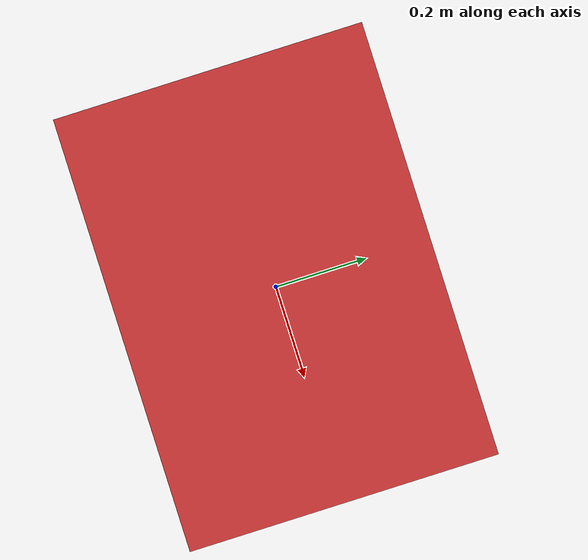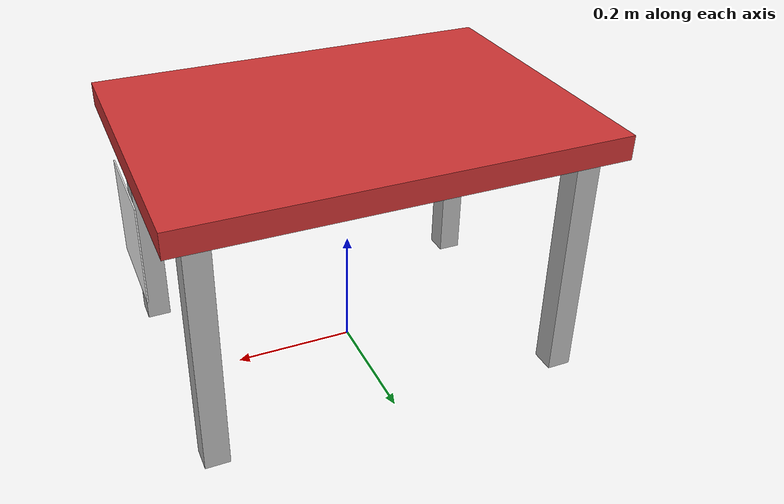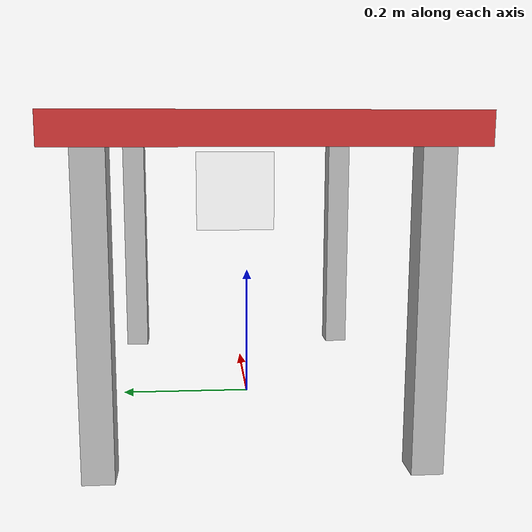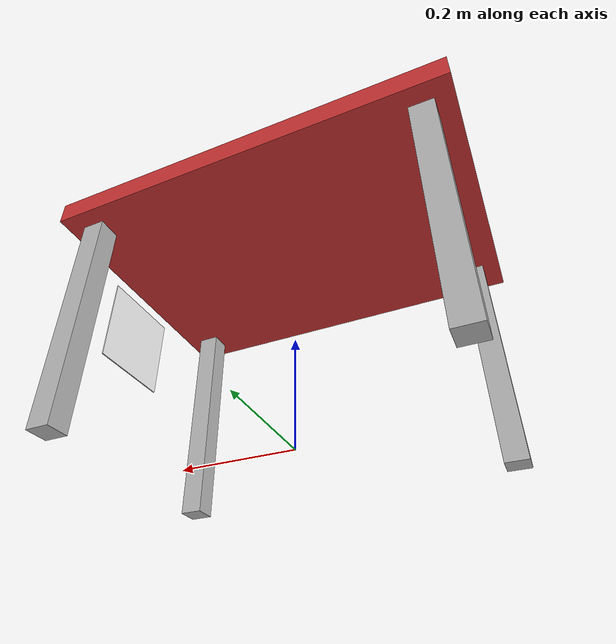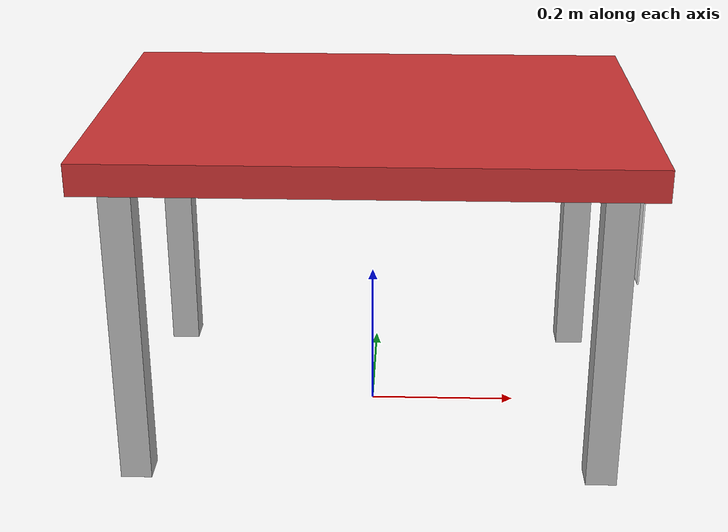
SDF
<?xml version="1.0" ?>
<sdf version="1.10">
  <model name="trolley">
    <!-- Static for now; becomes liftable once the lift/dock work begins (Phase 5). -->
    <static>true</static>

    <link name="frame">
      <!-- Raised platform (top), ~0.40 m clearance underneath for drive-under. -->
      <visual name="platform_v">
        <pose>0 0 0.42 0 0 0</pose>
        <geometry><box><size>0.7 0.5 0.04</size></box></geometry>
        <material><ambient>0.8 0.2 0.2 1</ambient><diffuse>0.8 0.2 0.2 1</diffuse></material>
      </visual>
      <collision name="platform_c">
        <pose>0 0 0.42 0 0 0</pose>
        <geometry><box><size>0.7 0.5 0.04</size></box></geometry>
      </collision>

      <!-- Four legs -->
      <visual name="leg_fl_v">
        <pose>0.3 0.2 0.21 0 0 0</pose>
        <geometry><box><size>0.04 0.04 0.42</size></box></geometry>
      </visual>
      <collision name="leg_fl_c">
        <pose>0.3 0.2 0.21 0 0 0</pose>
        <geometry><box><size>0.04 0.04 0.42</size></box></geometry>
      </collision>
      <visual name="leg_fr_v">
        <pose>0.3 -0.2 0.21 0 0 0</pose>
        <geometry><box><size>0.04 0.04 0.42</size></box></geometry>
      </visual>
      <collision name="leg_fr_c">
        <pose>0.3 -0.2 0.21 0 0 0</pose>
        <geometry><box><size>0.04 0.04 0.42</size></box></geometry>
      </collision>
      <visual name="leg_bl_v">
        <pose>-0.3 0.2 0.21 0 0 0</pose>
        <geometry><box><size>0.04 0.04 0.42</size></box></geometry>
      </visual>
      <collision name="leg_bl_c">
        <pose>-0.3 0.2 0.21 0 0 0</pose>
        <geometry><box><size>0.04 0.04 0.42</size></box></geometry>
      </collision>
      <visual name="leg_br_v">
        <pose>-0.3 -0.2 0.21 0 0 0</pose>
        <geometry><box><size>0.04 0.04 0.42</size></box></geometry>
      </visual>
      <collision name="leg_br_c">
        <pose>-0.3 -0.2 0.21 0 0 0</pose>
        <geometry><box><size>0.04 0.04 0.42</size></box></geometry>
      </collision>

      <!-- Front face plate where an AprilTag will be mounted for docking. -->
      <visual name="tag_plate_v">
        <pose>0.351 0 0.30 0 1.5708 0</pose>
        <geometry><box><size>0.16 0.16 0.002</size></box></geometry>
        <material><ambient>1 1 1 1</ambient><diffuse>1 1 1 1</diffuse></material>
      </visual>
    </link>
  </model>
</sdf>
